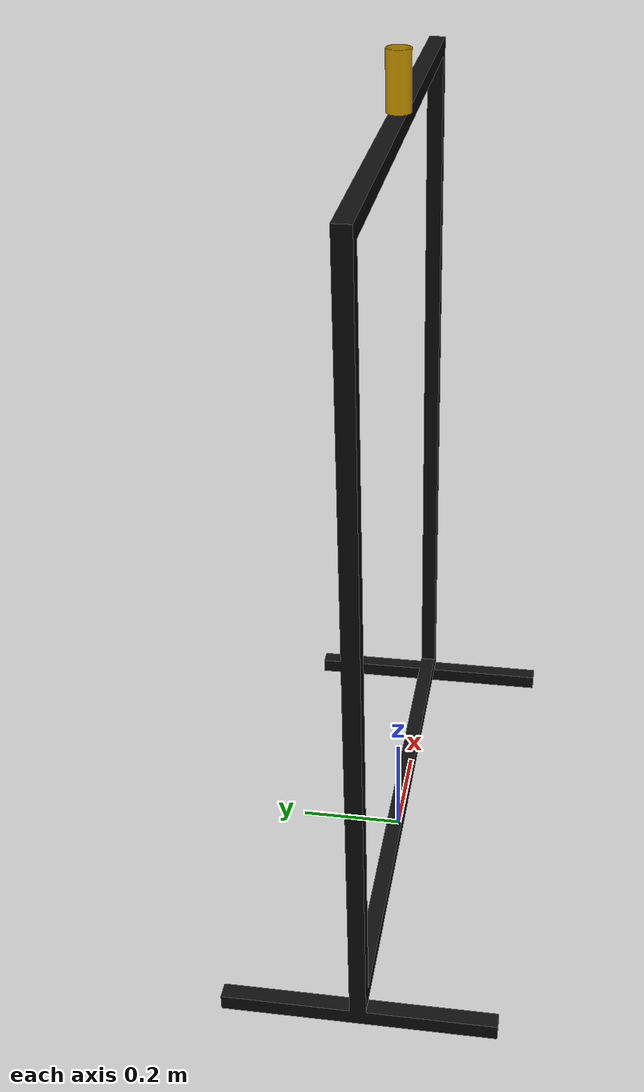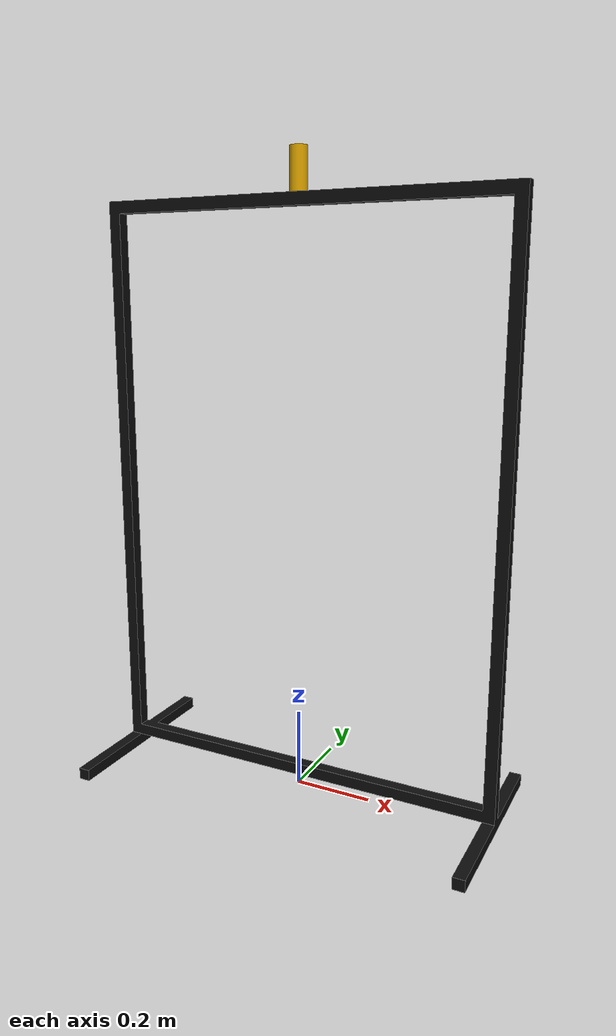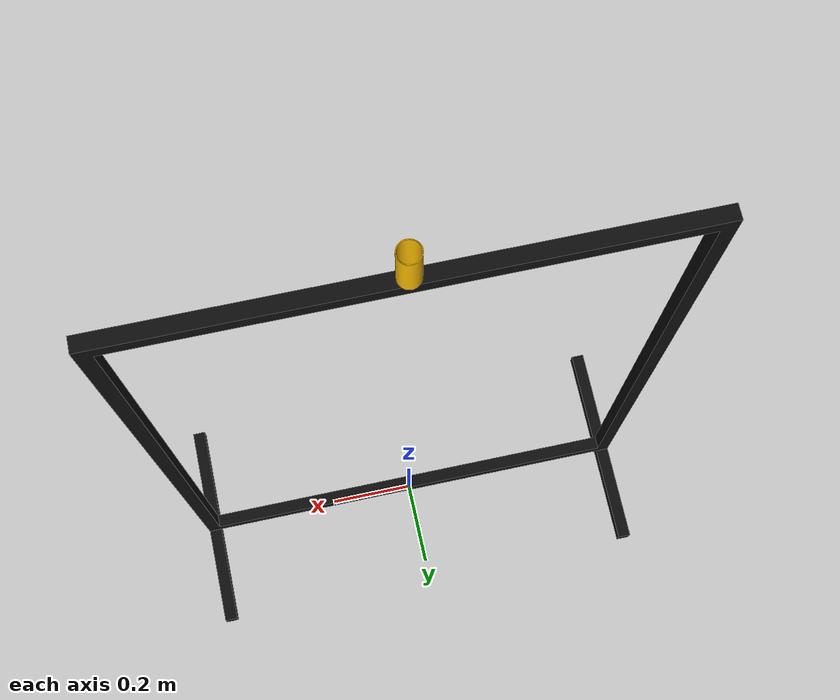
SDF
<?xml version="1.0"?>
<sdf version="1.6">
  <model name="teknofest_pinger">
    <static>true</static>
    <pose>0 0 0 0 0 0</pose>
    <link name="gate">
      <pose>0 0 0 0 0 0</pose>

      <!-- Collisions: primitive boxes over the mesh's 7 parts (a triangle
           soup collision for a static prop buys nothing but broadphase). -->
      <collision name="foot_left">
        <pose>-0.515 0 0.015 0 0 0</pose>
        <geometry><box><size>0.03 0.5 0.03</size></box></geometry>
      </collision>
      <collision name="foot_right">
        <pose>0.515 0 0.015 0 0 0</pose>
        <geometry><box><size>0.03 0.5 0.03</size></box></geometry>
      </collision>
      <collision name="post_left">
        <pose>-0.515 0 0.76 0 0 0</pose>
        <geometry><box><size>0.03 0.03 1.46</size></box></geometry>
      </collision>
      <collision name="post_right">
        <pose>0.515 0 0.76 0 0 0</pose>
        <geometry><box><size>0.03 0.03 1.46</size></box></geometry>
      </collision>
      <collision name="bottom_rail">
        <pose>0 0 0.045 0 0 0</pose>
        <geometry><box><size>1.0 0.03 0.03</size></box></geometry>
      </collision>
      <collision name="top_rail">
        <pose>0 0 1.475 0 0 0</pose>
        <geometry><box><size>1.0 0.03 0.03</size></box></geometry>
      </collision>
      <collision name="pinger_socket">
        <pose>0 0 1.54 0 0 0</pose>
        <geometry><cylinder><radius>0.0212</radius><length>0.10</length></cylinder></geometry>
      </collision>

      <visual name="frame">
        <geometry>
          <mesh><uri>model://teknofest_pinger/meshes/gate_frame.dae</uri></mesh>
        </geometry>
        <material>
          <ambient>0.02 0.02 0.021 1</ambient>
          <diffuse>0.055 0.055 0.06 1</diffuse>
          <specular>0.05 0.05 0.05 1</specular>
        </material>
      </visual>
      <visual name="pinger_socket">
        <geometry>
          <mesh><uri>model://teknofest_pinger/meshes/gate_pinger.dae</uri></mesh>
        </geometry>
        <material>
          <ambient>0.34 0.26 0.0 1</ambient>
          <diffuse>0.98 0.73 0.0 1</diffuse>
          <specular>0.1 0.1 0.1 1</specular>
        </material>
      </visual>
    </link>
  </model>
</sdf>
